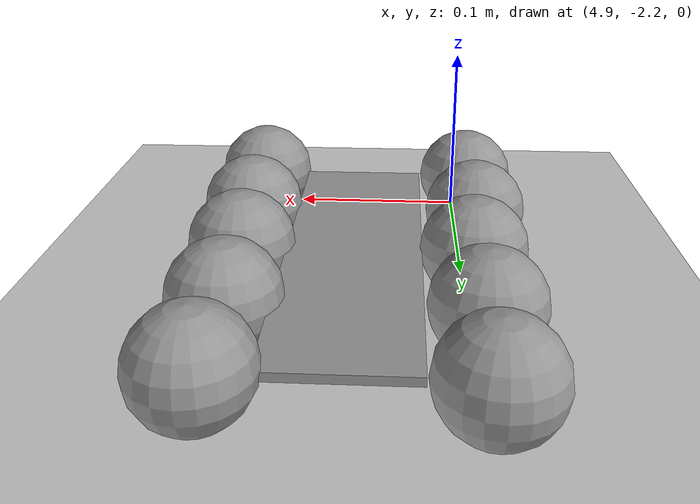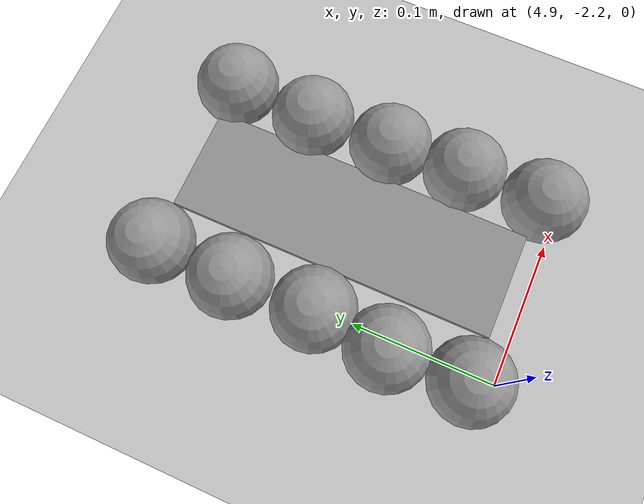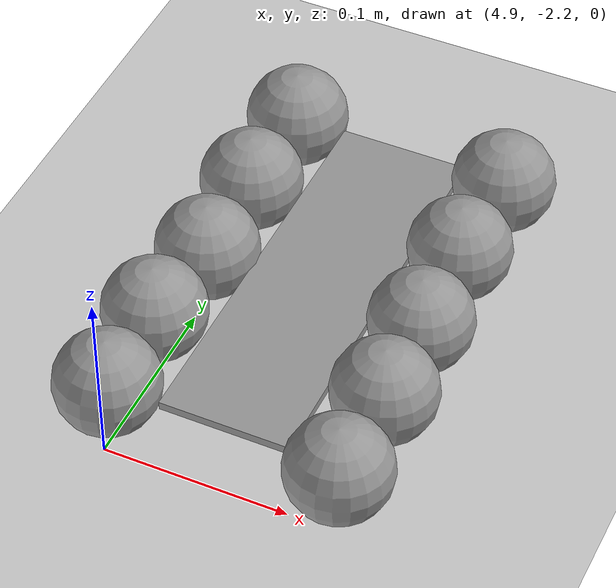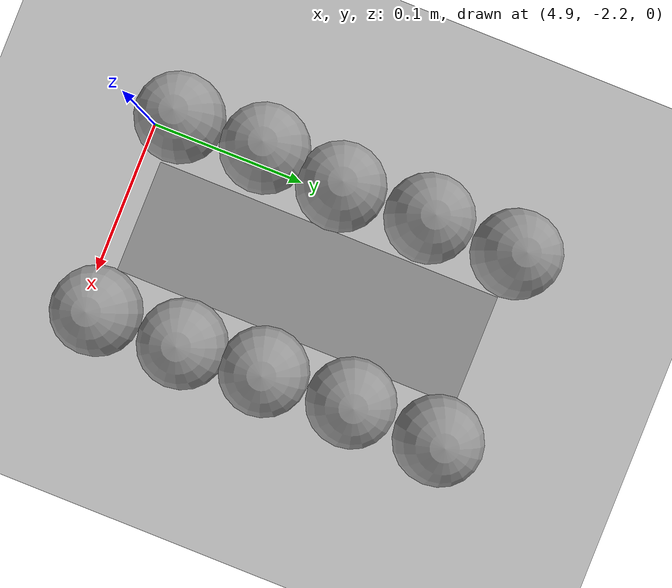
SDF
<sdf version="1.6">
 <world name="default">
  <model name="ground_plane">
   <static>1</static>
   <link name="link">
    <collision name="collision">
     <geometry><plane><normal>0 0 1</normal><size>100 100</size></plane></geometry>
     <surface>
      <contact><collide_bitmask>65535</collide_bitmask></contact>
      <friction><ode><mu>100</mu><mu2>50</mu2></ode></friction>
     </surface>
    </collision>
    <visual name="visual">
     <cast_shadows>0</cast_shadows>
     <geometry><plane><normal>0 0 1</normal><size>100 100</size></plane></geometry>
     <material>
      <script><uri>file://media/materials/scripts/gazebo.material</uri><name>Gazebo/Grey</name></script>
     </material>
    </visual>
   </link>
  </model>
  <model name="Robot2">
   <model name="Untitled">
    <link name="link_1">
     <inertial>
      <mass>7.02917e-05</mass>
      <inertia>
       <ixx>2.83738e-07</ixx>
       <ixy>0</ixy>
       <ixz>0</ixz>
       <iyy>2.92102e-08</iyy>
       <iyz>0</iyz>
       <izz>3.12703e-07</izz>
      </inertia>
     </inertial>
     <pose>0.001933 0.001386 -0.002717 0 -0 0</pose>
     <visual name="visual">
      <geometry><box><size>0.070469 0.220041 0.004569</size></box></geometry>
      <material>
       <lighting>1</lighting>
       <script><uri>file://media/materials/scripts/gazebo.material</uri><name>Gazebo/Grey</name></script>
      </material>
     </visual>
     <collision name="collision">
      <geometry><box><size>0.070469 0.220041 0.004569</size></box></geometry>
      <surface>
       <friction>
        <ode><mu>1</mu><mu2>1</mu2><fdir1>0 0 0</fdir1><slip1>0</slip1><slip2>0</slip2></ode>
        <torsional>
         <coefficient>1</coefficient>
         <patch_radius>0</patch_radius>
         <surface_radius>0</surface_radius>
         <use_patch_radius>1</use_patch_radius>
         <ode><slip>0</slip></ode>
        </torsional>
       </friction>
       <bounce><restitution_coefficient>0</restitution_coefficient><threshold>1e+06</threshold></bounce>
       <contact>
        <collide_without_contact>0</collide_without_contact>
        <collide_without_contact_bitmask>1</collide_without_contact_bitmask>
        <collide_bitmask>1</collide_bitmask>
        <ode>
         <soft_cfm>0</soft_cfm>
         <soft_erp>0.2</soft_erp>
         <kp>1e+13</kp>
         <kd>1</kd>
         <max_vel>0.01</max_vel>
         <min_depth>0</min_depth>
        </ode>
        <bullet>
         <split_impulse>1</split_impulse>
         <split_impulse_penetration_threshold>-0.01</split_impulse_penetration_threshold>
         <soft_cfm>0</soft_cfm>
         <soft_erp>0.2</soft_erp>
         <kp>1e+13</kp>
         <kd>1</kd>
        </bullet>
       </contact>
      </surface>
     </collision>
    </link>
    <link name="link_2">
     <inertial>
      <mass>0.000176069</mass>
      <inertia>
       <ixx>5.52942e-08</ixx>
       <ixy>0</ixy>
       <ixz>0</ixz>
       <iyy>5.52942e-08</iyy>
       <iyz>0</iyz>
       <izz>5.52942e-08</izz>
      </inertia>
     </inertial>
     <pose>0.061204 -0.003251 0.000272 0 -0 0</pose>
     <visual name="visual">
      <geometry><sphere><radius>0.02802</radius></sphere></geometry>
      <material>
       <lighting>1</lighting>
       <script><uri>file://media/materials/scripts/gazebo.material</uri><name>Gazebo/Grey</name></script>
      </material>
     </visual>
     <collision name="collision">
      <geometry><sphere><radius>0.02802</radius></sphere></geometry>
      <surface>
       <friction>
        <ode><mu>1</mu><mu2>1</mu2><fdir1>0 0 0</fdir1><slip1>0</slip1><slip2>0</slip2></ode>
        <torsional>
         <coefficient>1</coefficient>
         <patch_radius>0</patch_radius>
         <surface_radius>0</surface_radius>
         <use_patch_radius>1</use_patch_radius>
         <ode><slip>0</slip></ode>
        </torsional>
       </friction>
       <bounce><restitution_coefficient>0</restitution_coefficient><threshold>1e+06</threshold></bounce>
       <contact>
        <collide_without_contact>0</collide_without_contact>
        <collide_without_contact_bitmask>1</collide_without_contact_bitmask>
        <collide_bitmask>1</collide_bitmask>
        <ode>
         <soft_cfm>0</soft_cfm>
         <soft_erp>0.2</soft_erp>
         <kp>1e+13</kp>
         <kd>1</kd>
         <max_vel>0.01</max_vel>
         <min_depth>0</min_depth>
        </ode>
        <bullet>
         <split_impulse>1</split_impulse>
         <split_impulse_penetration_threshold>-0.01</split_impulse_penetration_threshold>
         <soft_cfm>0</soft_cfm>
         <soft_erp>0.2</soft_erp>
         <kp>1e+13</kp>
         <kd>1</kd>
        </bullet>
       </contact>
      </surface>
     </collision>
    </link>
    <link name="link_2_clone">
     <inertial>
      <mass>0.000176069</mass>
      <inertia>
       <ixx>5.52942e-08</ixx>
       <ixy>0</ixy>
       <ixz>0</ixz>
       <iyy>5.52942e-08</iyy>
       <iyz>0</iyz>
       <izz>5.52942e-08</izz>
      </inertia>
     </inertial>
     <pose>-0.060183 -0.001647 0.000272 0 -0 0</pose>
     <visual name="visual">
      <geometry><sphere><radius>0.02802</radius></sphere></geometry>
      <material>
       <lighting>1</lighting>
       <script><uri>file://media/materials/scripts/gazebo.material</uri><name>Gazebo/Grey</name></script>
       <shader type="pixel"/>
      </material>
     </visual>
     <collision name="collision">
      <geometry><sphere><radius>0.02802</radius></sphere></geometry>
      <surface>
       <friction>
        <ode><mu>1</mu><mu2>1</mu2><fdir1>0 0 0</fdir1><slip1>0</slip1><slip2>0</slip2></ode>
        <torsional>
         <coefficient>1</coefficient>
         <patch_radius>0</patch_radius>
         <surface_radius>0</surface_radius>
         <use_patch_radius>1</use_patch_radius>
         <ode><slip>0</slip></ode>
        </torsional>
       </friction>
       <bounce><restitution_coefficient>0</restitution_coefficient><threshold>1e+06</threshold></bounce>
       <contact>
        <collide_without_contact>0</collide_without_contact>
        <collide_without_contact_bitmask>1</collide_without_contact_bitmask>
        <collide_bitmask>1</collide_bitmask>
        <ode>
         <soft_cfm>0</soft_cfm>
         <soft_erp>0.2</soft_erp>
         <kp>1e+13</kp>
         <kd>1</kd>
         <max_vel>0.01</max_vel>
         <min_depth>0</min_depth>
        </ode>
        <bullet>
         <split_impulse>1</split_impulse>
         <split_impulse_penetration_threshold>-0.01</split_impulse_penetration_threshold>
         <soft_cfm>0</soft_cfm>
         <soft_erp>0.2</soft_erp>
         <kp>1e+13</kp>
         <kd>1</kd>
        </bullet>
       </contact>
      </surface>
     </collision>
    </link>
    <link name="link_2_clone_0">
     <inertial>
      <mass>0.000176069</mass>
      <inertia>
       <ixx>5.52942e-08</ixx>
       <ixy>0</ixy>
       <ixz>0</ixz>
       <iyy>5.52942e-08</iyy>
       <iyz>0</iyz>
       <izz>5.52942e-08</izz>
      </inertia>
     </inertial>
     <pose>0.063912 -0.055099 0.000272 0 -0 0</pose>
     <visual name="visual">
      <geometry><sphere><radius>0.02802</radius></sphere></geometry>
      <material>
       <lighting>1</lighting>
       <script><uri>file://media/materials/scripts/gazebo.material</uri><name>Gazebo/Grey</name></script>
       <shader type="pixel"/>
      </material>
     </visual>
     <collision name="collision">
      <geometry><sphere><radius>0.02802</radius></sphere></geometry>
      <surface>
       <friction>
        <ode><mu>1</mu><mu2>1</mu2><fdir1>0 0 0</fdir1><slip1>0</slip1><slip2>0</slip2></ode>
        <torsional>
         <coefficient>1</coefficient>
         <patch_radius>0</patch_radius>
         <surface_radius>0</surface_radius>
         <use_patch_radius>1</use_patch_radius>
         <ode><slip>0</slip></ode>
        </torsional>
       </friction>
       <bounce><restitution_coefficient>0</restitution_coefficient><threshold>1e+06</threshold></bounce>
       <contact>
        <collide_without_contact>0</collide_without_contact>
        <collide_without_contact_bitmask>1</collide_without_contact_bitmask>
        <collide_bitmask>1</collide_bitmask>
        <ode>
         <soft_cfm>0</soft_cfm>
         <soft_erp>0.2</soft_erp>
         <kp>1e+13</kp>
         <kd>1</kd>
         <max_vel>0.01</max_vel>
         <min_depth>0</min_depth>
        </ode>
        <bullet>
         <split_impulse>1</split_impulse>
         <split_impulse_penetration_threshold>-0.01</split_impulse_penetration_threshold>
         <soft_cfm>0</soft_cfm>
         <soft_erp>0.2</soft_erp>
         <kp>1e+13</kp>
         <kd>1</kd>
        </bullet>
       </contact>
      </surface>
     </collision>
    </link>
    <link name="link_2_clone_1">
     <inertial>
      <mass>0.000176069</mass>
      <inertia>
       <ixx>5.52942e-08</ixx>
       <ixy>0</ixy>
       <ixz>0</ixz>
       <iyy>5.52942e-08</iyy>
       <iyz>0</iyz>
       <izz>5.52942e-08</izz>
      </inertia>
     </inertial>
     <pose>0.05895 0.052825 0.000272 0 -0 0</pose>
     <visual name="visual">
      <geometry><sphere><radius>0.02802</radius></sphere></geometry>
      <material>
       <lighting>1</lighting>
       <script><uri>file://media/materials/scripts/gazebo.material</uri><name>Gazebo/Grey</name></script>
       <shader type="pixel"/>
      </material>
     </visual>
     <collision name="collision">
      <geometry><sphere><radius>0.02802</radius></sphere></geometry>
      <surface>
       <friction>
        <ode><mu>1</mu><mu2>1</mu2><fdir1>0 0 0</fdir1><slip1>0</slip1><slip2>0</slip2></ode>
        <torsional>
         <coefficient>1</coefficient>
         <patch_radius>0</patch_radius>
         <surface_radius>0</surface_radius>
         <use_patch_radius>1</use_patch_radius>
         <ode><slip>0</slip></ode>
        </torsional>
       </friction>
       <bounce><restitution_coefficient>0</restitution_coefficient><threshold>1e+06</threshold></bounce>
       <contact>
        <collide_without_contact>0</collide_without_contact>
        <collide_without_contact_bitmask>1</collide_without_contact_bitmask>
        <collide_bitmask>1</collide_bitmask>
        <ode>
         <soft_cfm>0</soft_cfm>
         <soft_erp>0.2</soft_erp>
         <kp>1e+13</kp>
         <kd>1</kd>
         <max_vel>0.01</max_vel>
         <min_depth>0</min_depth>
        </ode>
        <bullet>
         <split_impulse>1</split_impulse>
         <split_impulse_penetration_threshold>-0.01</split_impulse_penetration_threshold>
         <soft_cfm>0</soft_cfm>
         <soft_erp>0.2</soft_erp>
         <kp>1e+13</kp>
         <kd>1</kd>
        </bullet>
       </contact>
      </surface>
     </collision>
    </link>
    <link name="link_2_clone_2">
     <inertial>
      <mass>0.000176069</mass>
      <inertia>
       <ixx>5.52942e-08</ixx>
       <ixy>0</ixy>
       <ixz>0</ixz>
       <iyy>5.52942e-08</iyy>
       <iyz>0</iyz>
       <izz>5.52942e-08</izz>
      </inertia>
     </inertial>
     <pose>-0.06227 0.055125 0.000272 0 -0 0</pose>
     <visual name="visual">
      <geometry><sphere><radius>0.02802</radius></sphere></geometry>
      <material>
       <lighting>1</lighting>
       <script><uri>file://media/materials/scripts/gazebo.material</uri><name>Gazebo/Grey</name></script>
       <shader type="pixel"/>
      </material>
     </visual>
     <collision name="collision">
      <geometry><sphere><radius>0.02802</radius></sphere></geometry>
      <surface>
       <friction>
        <ode><mu>1</mu><mu2>1</mu2><fdir1>0 0 0</fdir1><slip1>0</slip1><slip2>0</slip2></ode>
        <torsional>
         <coefficient>1</coefficient>
         <patch_radius>0</patch_radius>
         <surface_radius>0</surface_radius>
         <use_patch_radius>1</use_patch_radius>
         <ode><slip>0</slip></ode>
        </torsional>
       </friction>
       <bounce><restitution_coefficient>0</restitution_coefficient><threshold>1e+06</threshold></bounce>
       <contact>
        <collide_without_contact>0</collide_without_contact>
        <collide_without_contact_bitmask>1</collide_without_contact_bitmask>
        <collide_bitmask>1</collide_bitmask>
        <ode>
         <soft_cfm>0</soft_cfm>
         <soft_erp>0.2</soft_erp>
         <kp>1e+13</kp>
         <kd>1</kd>
         <max_vel>0.01</max_vel>
         <min_depth>0</min_depth>
        </ode>
        <bullet>
         <split_impulse>1</split_impulse>
         <split_impulse_penetration_threshold>-0.01</split_impulse_penetration_threshold>
         <soft_cfm>0</soft_cfm>
         <soft_erp>0.2</soft_erp>
         <kp>1e+13</kp>
         <kd>1</kd>
        </bullet>
       </contact>
      </surface>
     </collision>
    </link>
    <link name="link_2_clone_3">
     <inertial>
      <mass>0.000176069</mass>
      <inertia>
       <ixx>5.52942e-08</ixx>
       <ixy>0</ixy>
       <ixz>0</ixz>
       <iyy>5.52942e-08</iyy>
       <iyz>0</iyz>
       <izz>5.52942e-08</izz>
      </inertia>
     </inertial>
     <pose>-0.064413 -0.052925 0.000272 0 -0 0</pose>
     <visual name="visual">
      <geometry><sphere><radius>0.02802</radius></sphere></geometry>
      <material>
       <lighting>1</lighting>
       <script><uri>file://media/materials/scripts/gazebo.material</uri><name>Gazebo/Grey</name></script>
       <shader type="pixel"/>
      </material>
     </visual>
     <collision name="collision">
      <geometry><sphere><radius>0.02802</radius></sphere></geometry>
      <surface>
       <friction>
        <ode><mu>1</mu><mu2>1</mu2><fdir1>0 0 0</fdir1><slip1>0</slip1><slip2>0</slip2></ode>
        <torsional>
         <coefficient>1</coefficient>
         <patch_radius>0</patch_radius>
         <surface_radius>0</surface_radius>
         <use_patch_radius>1</use_patch_radius>
         <ode><slip>0</slip></ode>
        </torsional>
       </friction>
       <bounce><restitution_coefficient>0</restitution_coefficient><threshold>1e+06</threshold></bounce>
       <contact>
        <collide_without_contact>0</collide_without_contact>
        <collide_without_contact_bitmask>1</collide_without_contact_bitmask>
        <collide_bitmask>1</collide_bitmask>
        <ode>
         <soft_cfm>0</soft_cfm>
         <soft_erp>0.2</soft_erp>
         <kp>1e+13</kp>
         <kd>1</kd>
         <max_vel>0.01</max_vel>
         <min_depth>0</min_depth>
        </ode>
        <bullet>
         <split_impulse>1</split_impulse>
         <split_impulse_penetration_threshold>-0.01</split_impulse_penetration_threshold>
         <soft_cfm>0</soft_cfm>
         <soft_erp>0.2</soft_erp>
         <kp>1e+13</kp>
         <kd>1</kd>
        </bullet>
       </contact>
      </surface>
     </collision>
    </link>
    <link name="link_2_clone_4">
     <inertial>
      <mass>0.000176069</mass>
      <inertia>
       <ixx>5.52942e-08</ixx>
       <ixy>0</ixy>
       <ixz>0</ixz>
       <iyy>5.52942e-08</iyy>
       <iyz>0</iyz>
       <izz>5.52942e-08</izz>
      </inertia>
     </inertial>
     <pose>-0.062342 -0.107469 0.000272 0 -0 0</pose>
     <visual name="visual">
      <geometry><sphere><radius>0.02802</radius></sphere></geometry>
      <material>
       <lighting>1</lighting>
       <script><uri>file://media/materials/scripts/gazebo.material</uri><name>Gazebo/Grey</name></script>
       <shader type="pixel"/>
      </material>
     </visual>
     <collision name="collision">
      <geometry><sphere><radius>0.02802</radius></sphere></geometry>
      <surface>
       <friction>
        <ode><mu>1</mu><mu2>1</mu2><fdir1>0 0 0</fdir1><slip1>0</slip1><slip2>0</slip2></ode>
        <torsional>
         <coefficient>1</coefficient>
         <patch_radius>0</patch_radius>
         <surface_radius>0</surface_radius>
         <use_patch_radius>1</use_patch_radius>
         <ode><slip>0</slip></ode>
        </torsional>
       </friction>
       <bounce><restitution_coefficient>0</restitution_coefficient><threshold>1e+06</threshold></bounce>
       <contact>
        <collide_without_contact>0</collide_without_contact>
        <collide_without_contact_bitmask>1</collide_without_contact_bitmask>
        <collide_bitmask>1</collide_bitmask>
        <ode>
         <soft_cfm>0</soft_cfm>
         <soft_erp>0.2</soft_erp>
         <kp>1e+13</kp>
         <kd>1</kd>
         <max_vel>0.01</max_vel>
         <min_depth>0</min_depth>
        </ode>
        <bullet>
         <split_impulse>1</split_impulse>
         <split_impulse_penetration_threshold>-0.01</split_impulse_penetration_threshold>
         <soft_cfm>0</soft_cfm>
         <soft_erp>0.2</soft_erp>
         <kp>1e+13</kp>
         <kd>1</kd>
        </bullet>
       </contact>
      </surface>
     </collision>
    </link>
    <link name="link_2_clone_5">
     <inertial>
      <mass>0.000176069</mass>
      <inertia>
       <ixx>5.52942e-08</ixx>
       <ixy>0</ixy>
       <ixz>0</ixz>
       <iyy>5.52942e-08</iyy>
       <iyz>0</iyz>
       <izz>5.52942e-08</izz>
      </inertia>
     </inertial>
     <pose>0.064551 -0.110672 0.000272 0 -0 0</pose>
     <visual name="visual">
      <geometry><sphere><radius>0.02802</radius></sphere></geometry>
      <material>
       <lighting>1</lighting>
       <script><uri>file://media/materials/scripts/gazebo.material</uri><name>Gazebo/Grey</name></script>
       <shader type="pixel"/>
      </material>
     </visual>
     <collision name="collision">
      <geometry><sphere><radius>0.02802</radius></sphere></geometry>
      <surface>
       <friction>
        <ode><mu>1</mu><mu2>1</mu2><fdir1>0 0 0</fdir1><slip1>0</slip1><slip2>0</slip2></ode>
        <torsional>
         <coefficient>1</coefficient>
         <patch_radius>0</patch_radius>
         <surface_radius>0</surface_radius>
         <use_patch_radius>1</use_patch_radius>
         <ode><slip>0</slip></ode>
        </torsional>
       </friction>
       <bounce><restitution_coefficient>0</restitution_coefficient><threshold>1e+06</threshold></bounce>
       <contact>
        <collide_without_contact>0</collide_without_contact>
        <collide_without_contact_bitmask>1</collide_without_contact_bitmask>
        <collide_bitmask>1</collide_bitmask>
        <ode>
         <soft_cfm>0</soft_cfm>
         <soft_erp>0.2</soft_erp>
         <kp>1e+13</kp>
         <kd>1</kd>
         <max_vel>0.01</max_vel>
         <min_depth>0</min_depth>
        </ode>
        <bullet>
         <split_impulse>1</split_impulse>
         <split_impulse_penetration_threshold>-0.01</split_impulse_penetration_threshold>
         <soft_cfm>0</soft_cfm>
         <soft_erp>0.2</soft_erp>
         <kp>1e+13</kp>
         <kd>1</kd>
        </bullet>
       </contact>
      </surface>
     </collision>
    </link>
    <link name="link_2_clone_6">
     <inertial>
      <mass>0.000176069</mass>
      <inertia>
       <ixx>5.52942e-08</ixx>
       <ixy>0</ixy>
       <ixz>0</ixz>
       <iyy>5.52942e-08</iyy>
       <iyz>0</iyz>
       <izz>5.52942e-08</izz>
      </inertia>
     </inertial>
     <pose>-0.061733 0.111754 0.000272 0 -0 0</pose>
     <visual name="visual">
      <geometry><sphere><radius>0.02802</radius></sphere></geometry>
      <material>
       <lighting>1</lighting>
       <script><uri>file://media/materials/scripts/gazebo.material</uri><name>Gazebo/Grey</name></script>
       <shader type="pixel"/>
      </material>
     </visual>
     <collision name="collision">
      <geometry><sphere><radius>0.02802</radius></sphere></geometry>
      <surface>
       <friction>
        <ode><mu>1</mu><mu2>1</mu2><fdir1>0 0 0</fdir1><slip1>0</slip1><slip2>0</slip2></ode>
        <torsional>
         <coefficient>1</coefficient>
         <patch_radius>0</patch_radius>
         <surface_radius>0</surface_radius>
         <use_patch_radius>1</use_patch_radius>
         <ode><slip>0</slip></ode>
        </torsional>
       </friction>
       <bounce><restitution_coefficient>0</restitution_coefficient><threshold>1e+06</threshold></bounce>
       <contact>
        <collide_without_contact>0</collide_without_contact>
        <collide_without_contact_bitmask>1</collide_without_contact_bitmask>
        <collide_bitmask>1</collide_bitmask>
        <ode>
         <soft_cfm>0</soft_cfm>
         <soft_erp>0.2</soft_erp>
         <kp>1e+13</kp>
         <kd>1</kd>
         <max_vel>0.01</max_vel>
         <min_depth>0</min_depth>
        </ode>
        <bullet>
         <split_impulse>1</split_impulse>
         <split_impulse_penetration_threshold>-0.01</split_impulse_penetration_threshold>
         <soft_cfm>0</soft_cfm>
         <soft_erp>0.2</soft_erp>
         <kp>1e+13</kp>
         <kd>1</kd>
        </bullet>
       </contact>
      </surface>
     </collision>
    </link>
    <link name="link_2_clone_7">
     <inertial>
      <mass>0.000176069</mass>
      <inertia>
       <ixx>5.52942e-08</ixx>
       <ixy>0</ixy>
       <ixz>0</ixz>
       <iyy>5.52942e-08</iyy>
       <iyz>0</iyz>
       <izz>5.52942e-08</izz>
      </inertia>
     </inertial>
     <pose>0.060394 0.109973 0.000272 0 -0 0</pose>
     <visual name="visual">
      <geometry><sphere><radius>0.02802</radius></sphere></geometry>
      <material>
       <lighting>1</lighting>
       <script><uri>file://media/materials/scripts/gazebo.material</uri><name>Gazebo/Grey</name></script>
       <shader type="pixel"/>
      </material>
     </visual>
     <collision name="collision">
      <geometry><sphere><radius>0.02802</radius></sphere></geometry>
      <surface>
       <friction>
        <ode><mu>1</mu><mu2>1</mu2><fdir1>0 0 0</fdir1><slip1>0</slip1><slip2>0</slip2></ode>
        <torsional>
         <coefficient>1</coefficient>
         <patch_radius>0</patch_radius>
         <surface_radius>0</surface_radius>
         <use_patch_radius>1</use_patch_radius>
         <ode><slip>0</slip></ode>
        </torsional>
       </friction>
       <bounce><restitution_coefficient>0</restitution_coefficient><threshold>1e+06</threshold></bounce>
       <contact>
        <collide_without_contact>0</collide_without_contact>
        <collide_without_contact_bitmask>1</collide_without_contact_bitmask>
        <collide_bitmask>1</collide_bitmask>
        <ode>
         <soft_cfm>0</soft_cfm>
         <soft_erp>0.2</soft_erp>
         <kp>1e+13</kp>
         <kd>1</kd>
         <max_vel>0.01</max_vel>
         <min_depth>0</min_depth>
        </ode>
        <bullet>
         <split_impulse>1</split_impulse>
         <split_impulse_penetration_threshold>-0.01</split_impulse_penetration_threshold>
         <soft_cfm>0</soft_cfm>
         <soft_erp>0.2</soft_erp>
         <kp>1e+13</kp>
         <kd>1</kd>
        </bullet>
       </contact>
      </surface>
     </collision>
    </link>
    <static>0</static>
    <pose>2e-06 -2e-06 -0 0 -0 0</pose>
   </model>
   <joint name="link_1_JOINT_0" type="revolute">
    <parent>Untitled::link_1</parent>
    <child>Untitled::link_2</child>
    <axis>
     <xyz>1 0 0</xyz>
     <use_parent_model_frame>0</use_parent_model_frame>
     <limit>
      <lower>-1.79769e+308</lower>
      <upper>1.79769e+308</upper>
      <effort>-1</effort>
      <velocity>-1</velocity>
     </limit>
     <dynamics>
      <spring_reference>0</spring_reference>
      <spring_stiffness>0</spring_stiffness>
      <damping>0</damping>
     </dynamics>
    </axis>
    <physics>
     <ode><limit><cfm>0</cfm><erp>0.2</erp></limit><suspension><cfm>0</cfm><erp>0.2</erp></suspension></ode>
    </physics>
   </joint>
   <joint name="link_1_JOINT_10" type="revolute">
    <parent>Untitled::link_1</parent>
    <child>Untitled::link_2_clone_6</child>
    <axis>
     <xyz>1 0 0</xyz>
     <use_parent_model_frame>0</use_parent_model_frame>
     <limit>
      <lower>-1.79769e+308</lower>
      <upper>1.79769e+308</upper>
      <effort>-1</effort>
      <velocity>-1</velocity>
     </limit>
     <dynamics>
      <spring_reference>0</spring_reference>
      <spring_stiffness>0</spring_stiffness>
      <damping>0</damping>
     </dynamics>
    </axis>
    <physics>
     <ode><limit><cfm>0</cfm><erp>0.2</erp></limit><suspension><cfm>0</cfm><erp>0.2</erp></suspension></ode>
    </physics>
   </joint>
   <joint name="link_1_JOINT_1" type="revolute">
    <parent>Untitled::link_1</parent>
    <child>Untitled::link_2_clone_0</child>
    <axis>
     <xyz>1 0 0</xyz>
     <use_parent_model_frame>0</use_parent_model_frame>
     <limit>
      <lower>-1.79769e+308</lower>
      <upper>1.79769e+308</upper>
      <effort>-1</effort>
      <velocity>-1</velocity>
     </limit>
     <dynamics>
      <spring_reference>0</spring_reference>
      <spring_stiffness>0</spring_stiffness>
      <damping>0</damping>
     </dynamics>
    </axis>
    <physics>
     <ode><limit><cfm>0</cfm><erp>0.2</erp></limit><suspension><cfm>0</cfm><erp>0.2</erp></suspension></ode>
    </physics>
   </joint>
   <joint name="link_1_JOINT_2" type="revolute">
    <parent>Untitled::link_1</parent>
    <child>Untitled::link_2_clone_5</child>
    <axis>
     <xyz>1 0 0</xyz>
     <use_parent_model_frame>0</use_parent_model_frame>
     <limit>
      <lower>-1.79769e+308</lower>
      <upper>1.79769e+308</upper>
      <effort>-1</effort>
      <velocity>-1</velocity>
     </limit>
     <dynamics>
      <spring_reference>0</spring_reference>
      <spring_stiffness>0</spring_stiffness>
      <damping>0</damping>
     </dynamics>
    </axis>
    <physics>
     <ode><limit><cfm>0</cfm><erp>0.2</erp></limit><suspension><cfm>0</cfm><erp>0.2</erp></suspension></ode>
    </physics>
   </joint>
   <joint name="link_1_JOINT_3" type="revolute">
    <parent>Untitled::link_1</parent>
    <child>Untitled::link_2_clone_1</child>
    <axis>
     <xyz>1 0 0</xyz>
     <use_parent_model_frame>0</use_parent_model_frame>
     <limit>
      <lower>-1.79769e+308</lower>
      <upper>1.79769e+308</upper>
      <effort>-1</effort>
      <velocity>-1</velocity>
     </limit>
     <dynamics>
      <spring_reference>0</spring_reference>
      <spring_stiffness>0</spring_stiffness>
      <damping>0</damping>
     </dynamics>
    </axis>
    <physics>
     <ode><limit><cfm>0</cfm><erp>0.2</erp></limit><suspension><cfm>0</cfm><erp>0.2</erp></suspension></ode>
    </physics>
   </joint>
   <joint name="link_1_JOINT_4" type="revolute">
    <parent>Untitled::link_1</parent>
    <child>Untitled::link_2_clone_7</child>
    <axis>
     <xyz>1 0 0</xyz>
     <use_parent_model_frame>0</use_parent_model_frame>
     <limit>
      <lower>-1.79769e+308</lower>
      <upper>1.79769e+308</upper>
      <effort>-1</effort>
      <velocity>-1</velocity>
     </limit>
     <dynamics>
      <spring_reference>0</spring_reference>
      <spring_stiffness>0</spring_stiffness>
      <damping>0</damping>
     </dynamics>
    </axis>
    <physics>
     <ode><limit><cfm>0</cfm><erp>0.2</erp></limit><suspension><cfm>0</cfm><erp>0.2</erp></suspension></ode>
    </physics>
   </joint>
   <joint name="link_1_JOINT_5" type="revolute">
    <parent>Untitled::link_1</parent>
    <child>Untitled::link_2_clone_4</child>
    <axis>
     <xyz>1 0 0</xyz>
     <use_parent_model_frame>0</use_parent_model_frame>
     <limit>
      <lower>-1.79769e+308</lower>
      <upper>1.79769e+308</upper>
      <effort>-1</effort>
      <velocity>-1</velocity>
     </limit>
     <dynamics>
      <spring_reference>0</spring_reference>
      <spring_stiffness>0</spring_stiffness>
      <damping>0</damping>
     </dynamics>
    </axis>
    <physics>
     <ode><limit><cfm>0</cfm><erp>0.2</erp></limit><suspension><cfm>0</cfm><erp>0.2</erp></suspension></ode>
    </physics>
   </joint>
   <joint name="link_1_JOINT_7" type="revolute">
    <parent>Untitled::link_1</parent>
    <child>Untitled::link_2_clone_3</child>
    <axis>
     <xyz>1 0 0</xyz>
     <use_parent_model_frame>0</use_parent_model_frame>
     <limit>
      <lower>-1.79769e+308</lower>
      <upper>1.79769e+308</upper>
      <effort>-1</effort>
      <velocity>-1</velocity>
     </limit>
     <dynamics>
      <spring_reference>0</spring_reference>
      <spring_stiffness>0</spring_stiffness>
      <damping>0</damping>
     </dynamics>
    </axis>
    <physics>
     <ode><limit><cfm>0</cfm><erp>0.2</erp></limit><suspension><cfm>0</cfm><erp>0.2</erp></suspension></ode>
    </physics>
   </joint>
   <joint name="link_1_JOINT_8" type="revolute">
    <parent>Untitled::link_1</parent>
    <child>Untitled::link_2_clone</child>
    <axis>
     <xyz>1 0 0</xyz>
     <use_parent_model_frame>0</use_parent_model_frame>
     <limit>
      <lower>-1.79769e+308</lower>
      <upper>1.79769e+308</upper>
      <effort>-1</effort>
      <velocity>-1</velocity>
     </limit>
     <dynamics>
      <spring_reference>0</spring_reference>
      <spring_stiffness>0</spring_stiffness>
      <damping>0</damping>
     </dynamics>
    </axis>
    <physics>
     <ode><limit><cfm>0</cfm><erp>0.2</erp></limit><suspension><cfm>0</cfm><erp>0.2</erp></suspension></ode>
    </physics>
   </joint>
   <joint name="link_1_JOINT_9" type="revolute">
    <parent>Untitled::link_1</parent>
    <child>Untitled::link_2_clone_2</child>
    <axis>
     <xyz>1 0 0</xyz>
     <use_parent_model_frame>0</use_parent_model_frame>
     <limit>
      <lower>-1.79769e+308</lower>
      <upper>1.79769e+308</upper>
      <effort>-1</effort>
      <velocity>-1</velocity>
     </limit>
     <dynamics>
      <spring_reference>0</spring_reference>
      <spring_stiffness>0</spring_stiffness>
      <damping>0</damping>
     </dynamics>
    </axis>
    <physics>
     <ode><limit><cfm>0</cfm><erp>0.2</erp></limit><suspension><cfm>0</cfm><erp>0.2</erp></suspension></ode>
    </physics>
   </joint>
   <static>0</static>
   <pose>4.95615 -2.07393 0.027748 -5.7e-05 3.4e-05 -0.002344</pose>
  </model>
 </world>
</sdf>
